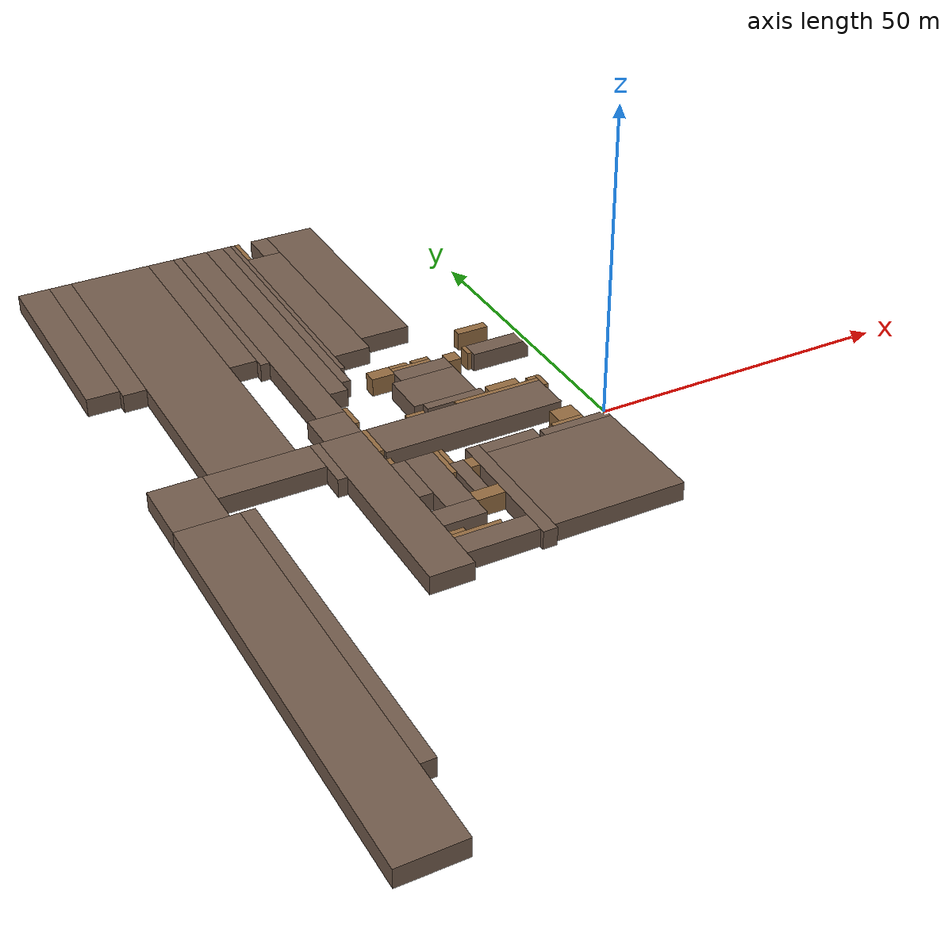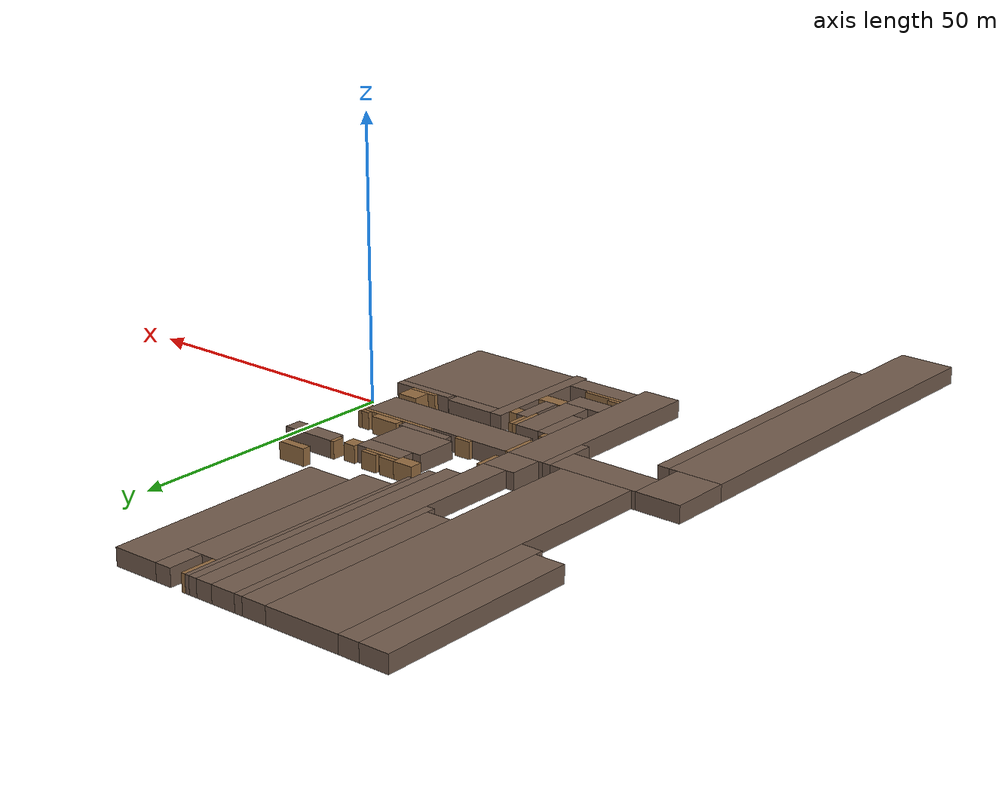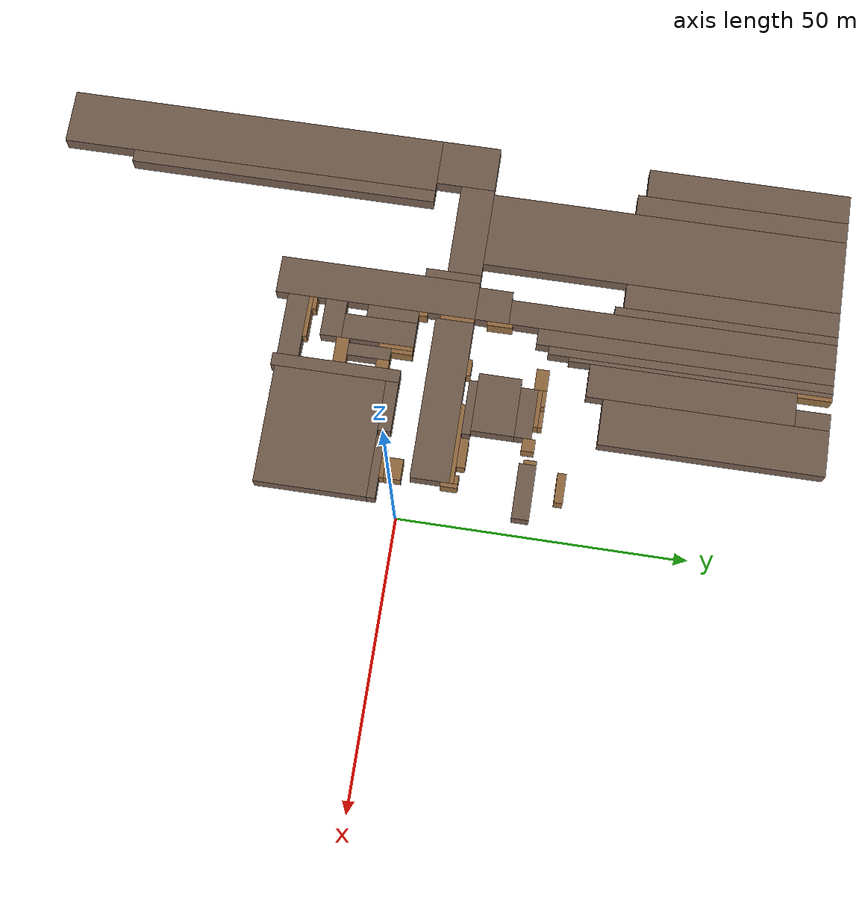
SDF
<sdf version="1.9">
 <world name="mosim_ue_factoryenvironmentcollect">
  <model name="ue_occ_0000">
   <static>true</static>
   <pose>-64.875 -36 1.5 0 0 0</pose>
   <link name="link">
    <collision name="collision"><geometry><box><size>9.75 67.5 3</size></box></geometry></collision>
    <visual name="visual">
     <geometry><box><size>9.75 67.5 3</size></box></geometry>
     <material><ambient>0.45 0.36 0.3 1</ambient><diffuse>0.45 0.36 0.3 1</diffuse></material>
    </visual>
   </link>
  </model>
  <model name="ue_occ_0001">
   <static>true</static>
   <pose>-58.875 -29.625 1.5 0 0 0</pose>
   <link name="link">
    <collision name="collision"><geometry><box><size>2.25 54.75 3</size></box></geometry></collision>
    <visual name="visual">
     <geometry><box><size>2.25 54.75 3</size></box></geometry>
     <material><ambient>0.45 0.36 0.3 1</ambient><diffuse>0.45 0.36 0.3 1</diffuse></material>
    </visual>
   </link>
  </model>
  <model name="ue_occ_0003">
   <static>true</static>
   <pose>-40.125 -9.375 1.5 0 0 0</pose>
   <link name="link">
    <collision name="collision"><geometry><box><size>6.75 35.25 3</size></box></geometry></collision>
    <visual name="visual">
     <geometry><box><size>6.75 35.25 3</size></box></geometry>
     <material><ambient>0.45 0.36 0.3 1</ambient><diffuse>0.45 0.36 0.3 1</diffuse></material>
    </visual>
   </link>
  </model>
  <model name="ue_occ_0004">
   <static>true</static>
   <pose>-24.375 -14.25 1.5 0 0 0</pose>
   <link name="link">
    <collision name="collision"><geometry><box><size>2.25 22.5 3</size></box></geometry></collision>
    <visual name="visual">
     <geometry><box><size>2.25 22.5 3</size></box></geometry>
     <material><ambient>0.45 0.36 0.3 1</ambient><diffuse>0.45 0.36 0.3 1</diffuse></material>
    </visual>
   </link>
  </model>
  <model name="ue_occ_0005">
   <static>true</static>
   <pose>-31.125 -22.875 1.5 0 0 0</pose>
   <link name="link">
    <collision name="collision"><geometry><box><size>11.25 3.75 3</size></box></geometry></collision>
    <visual name="visual">
     <geometry><box><size>11.25 3.75 3</size></box></geometry>
     <material><ambient>0.45 0.36 0.3 1</ambient><diffuse>0.45 0.36 0.3 1</diffuse></material>
    </visual>
   </link>
  </model>
  <model name="ue_occ_0006">
   <static>true</static>
   <pose>-12.75 -15 1.5 0 0 0</pose>
   <link name="link">
    <collision name="collision"><geometry><box><size>21 19.5 3</size></box></geometry></collision>
    <visual name="visual">
     <geometry><box><size>21 19.5 3</size></box></geometry>
     <material><ambient>0.45 0.36 0.3 1</ambient><diffuse>0.45 0.36 0.3 1</diffuse></material>
    </visual>
   </link>
  </model>
  <model name="ue_occ_0014">
   <static>true</static>
   <pose>-33 -20.625 1.5 0 0 0</pose>
   <link name="link">
    <collision name="collision"><geometry><box><size>7.5 0.75 3</size></box></geometry></collision>
    <visual name="visual">
     <geometry><box><size>7.5 0.75 3</size></box></geometry>
     <material><ambient>0.58 0.42 0.25 1</ambient><diffuse>0.58 0.42 0.25 1</diffuse></material>
    </visual>
   </link>
  </model>
  <model name="ue_occ_0015">
   <static>true</static>
   <pose>-35.625 -19.875 1.5 0 0 0</pose>
   <link name="link">
    <collision name="collision"><geometry><box><size>2.25 0.75 3</size></box></geometry></collision>
    <visual name="visual">
     <geometry><box><size>2.25 0.75 3</size></box></geometry>
     <material><ambient>0.58 0.42 0.25 1</ambient><diffuse>0.58 0.42 0.25 1</diffuse></material>
    </visual>
   </link>
  </model>
  <model name="ue_occ_0023">
   <static>true</static>
   <pose>-33.375 -16.125 1.5 0 0 0</pose>
   <link name="link">
    <collision name="collision"><geometry><box><size>6.75 3.75 3</size></box></geometry></collision>
    <visual name="visual">
     <geometry><box><size>6.75 3.75 3</size></box></geometry>
     <material><ambient>0.45 0.36 0.3 1</ambient><diffuse>0.45 0.36 0.3 1</diffuse></material>
    </visual>
   </link>
  </model>
  <model name="ue_occ_0024">
   <static>true</static>
   <pose>-27.75 -13.875 1.5 0 0 0</pose>
   <link name="link">
    <collision name="collision"><geometry><box><size>4.5 2.25 3</size></box></geometry></collision>
    <visual name="visual">
     <geometry><box><size>4.5 2.25 3</size></box></geometry>
     <material><ambient>0.58 0.42 0.25 1</ambient><diffuse>0.58 0.42 0.25 1</diffuse></material>
    </visual>
   </link>
  </model>
  <model name="ue_occ_0026">
   <static>true</static>
   <pose>-32.25 -7.875 1.5 0 0 0</pose>
   <link name="link">
    <collision name="collision"><geometry><box><size>4.5 12.75 3</size></box></geometry></collision>
    <visual name="visual">
     <geometry><box><size>4.5 12.75 3</size></box></geometry>
     <material><ambient>0.45 0.36 0.3 1</ambient><diffuse>0.45 0.36 0.3 1</diffuse></material>
    </visual>
   </link>
  </model>
  <model name="ue_occ_0027">
   <static>true</static>
   <pose>-28.125 -9 1.5 0 0 0</pose>
   <link name="link">
    <collision name="collision"><geometry><box><size>2.25 7.5 3</size></box></geometry></collision>
    <visual name="visual">
     <geometry><box><size>2.25 7.5 3</size></box></geometry>
     <material><ambient>0.45 0.36 0.3 1</ambient><diffuse>0.45 0.36 0.3 1</diffuse></material>
    </visual>
   </link>
  </model>
  <model name="ue_occ_0028">
   <static>true</static>
   <pose>-35.625 -6 1.5 0 0 0</pose>
   <link name="link">
    <collision name="collision"><geometry><box><size>2.25 9 3</size></box></geometry></collision>
    <visual name="visual">
     <geometry><box><size>2.25 9 3</size></box></geometry>
     <material><ambient>0.45 0.36 0.3 1</ambient><diffuse>0.45 0.36 0.3 1</diffuse></material>
    </visual>
   </link>
  </model>
  <model name="ue_occ_0029">
   <static>true</static>
   <pose>-29.625 -4.5 1.5 0 0 0</pose>
   <link name="link">
    <collision name="collision"><geometry><box><size>0.75 6 3</size></box></geometry></collision>
    <visual name="visual">
     <geometry><box><size>0.75 6 3</size></box></geometry>
     <material><ambient>0.58 0.42 0.25 1</ambient><diffuse>0.58 0.42 0.25 1</diffuse></material>
    </visual>
   </link>
  </model>
  <model name="ue_occ_0030">
   <static>true</static>
   <pose>-26.25 -6.375 1.5 0 0 0</pose>
   <link name="link">
    <collision name="collision"><geometry><box><size>1.5 2.25 3</size></box></geometry></collision>
    <visual name="visual">
     <geometry><box><size>1.5 2.25 3</size></box></geometry>
     <material><ambient>0.58 0.42 0.25 1</ambient><diffuse>0.58 0.42 0.25 1</diffuse></material>
    </visual>
   </link>
  </model>
  <model name="ue_occ_0032">
   <static>true</static>
   <pose>-28.875 -3.375 1.5 0 0 0</pose>
   <link name="link">
    <collision name="collision"><geometry><box><size>0.75 3.75 3</size></box></geometry></collision>
    <visual name="visual">
     <geometry><box><size>0.75 3.75 3</size></box></geometry>
     <material><ambient>0.58 0.42 0.25 1</ambient><diffuse>0.58 0.42 0.25 1</diffuse></material>
    </visual>
   </link>
  </model>
  <model name="ue_occ_0033">
   <static>true</static>
   <pose>-18.75 -4.125 1.5 0 0 0</pose>
   <link name="link">
    <collision name="collision"><geometry><box><size>9 2.25 3</size></box></geometry></collision>
    <visual name="visual">
     <geometry><box><size>9 2.25 3</size></box></geometry>
     <material><ambient>0.45 0.36 0.3 1</ambient><diffuse>0.45 0.36 0.3 1</diffuse></material>
    </visual>
   </link>
  </model>
  <model name="ue_occ_0034">
   <static>true</static>
   <pose>-7.875 -4.5 1.5 0 0 0</pose>
   <link name="link">
    <collision name="collision"><geometry><box><size>11.25 1.5 3</size></box></geometry></collision>
    <visual name="visual">
     <geometry><box><size>11.25 1.5 3</size></box></geometry>
     <material><ambient>0.45 0.36 0.3 1</ambient><diffuse>0.45 0.36 0.3 1</diffuse></material>
    </visual>
   </link>
  </model>
  <model name="ue_occ_0035">
   <static>true</static>
   <pose>-8.625 -3.375 1.5 0 0 0</pose>
   <link name="link">
    <collision name="collision"><geometry><box><size>5.25 0.75 3</size></box></geometry></collision>
    <visual name="visual">
     <geometry><box><size>5.25 0.75 3</size></box></geometry>
     <material><ambient>0.58 0.42 0.25 1</ambient><diffuse>0.58 0.42 0.25 1</diffuse></material>
    </visual>
   </link>
  </model>
  <model name="ue_occ_0036">
   <static>true</static>
   <pose>-7.875 -1.5 1.5 0 0 0</pose>
   <link name="link">
    <collision name="collision"><geometry><box><size>3.75 3 3</size></box></geometry></collision>
    <visual name="visual">
     <geometry><box><size>3.75 3 3</size></box></geometry>
     <material><ambient>0.58 0.42 0.25 1</ambient><diffuse>0.58 0.42 0.25 1</diffuse></material>
    </visual>
   </link>
  </model>
  <model name="ue_occ_0037">
   <static>true</static>
   <pose>-65.625 3 1.5 0 0 0</pose>
   <link name="link">
    <collision name="collision"><geometry><box><size>8.25 10.5 3</size></box></geometry></collision>
    <visual name="visual">
     <geometry><box><size>8.25 10.5 3</size></box></geometry>
     <material><ambient>0.45 0.36 0.3 1</ambient><diffuse>0.45 0.36 0.3 1</diffuse></material>
    </visual>
   </link>
  </model>
  <model name="ue_occ_0038">
   <static>true</static>
   <pose>-44.25 3.375 1.5 0 0 0</pose>
   <link name="link">
    <collision name="collision"><geometry><box><size>1.5 9.75 3</size></box></geometry></collision>
    <visual name="visual">
     <geometry><box><size>1.5 9.75 3</size></box></geometry>
     <material><ambient>0.45 0.36 0.3 1</ambient><diffuse>0.45 0.36 0.3 1</diffuse></material>
    </visual>
   </link>
  </model>
  <model name="ue_occ_0039">
   <static>true</static>
   <pose>-36.375 -0.75 1.5 0 0 0</pose>
   <link name="link">
    <collision name="collision"><geometry><box><size>0.75 1.5 3</size></box></geometry></collision>
    <visual name="visual">
     <geometry><box><size>0.75 1.5 3</size></box></geometry>
     <material><ambient>0.58 0.42 0.25 1</ambient><diffuse>0.58 0.42 0.25 1</diffuse></material>
    </visual>
   </link>
  </model>
  <model name="ue_occ_0040">
   <static>true</static>
   <pose>-21.375 4.875 1.5 0 0 0</pose>
   <link name="link">
    <collision name="collision"><geometry><box><size>29.25 6.75 3</size></box></geometry></collision>
    <visual name="visual">
     <geometry><box><size>29.25 6.75 3</size></box></geometry>
     <material><ambient>0.45 0.36 0.3 1</ambient><diffuse>0.45 0.36 0.3 1</diffuse></material>
    </visual>
   </link>
  </model>
  <model name="ue_occ_0043">
   <static>true</static>
   <pose>-53.25 5.25 1.5 0 0 0</pose>
   <link name="link">
    <collision name="collision"><geometry><box><size>16.5 6 3</size></box></geometry></collision>
    <visual name="visual">
     <geometry><box><size>16.5 6 3</size></box></geometry>
     <material><ambient>0.45 0.36 0.3 1</ambient><diffuse>0.45 0.36 0.3 1</diffuse></material>
    </visual>
   </link>
  </model>
  <model name="ue_occ_0044">
   <static>true</static>
   <pose>-36.375 5.25 1.5 0 0 0</pose>
   <link name="link">
    <collision name="collision"><geometry><box><size>0.75 6 3</size></box></geometry></collision>
    <visual name="visual">
     <geometry><box><size>0.75 6 3</size></box></geometry>
     <material><ambient>0.58 0.42 0.25 1</ambient><diffuse>0.58 0.42 0.25 1</diffuse></material>
    </visual>
   </link>
  </model>
  <model name="ue_occ_0050">
   <static>true</static>
   <pose>-6.375 8.25 1.5 0 0 0</pose>
   <link name="link">
    <collision name="collision"><geometry><box><size>0.75 3 3</size></box></geometry></collision>
    <visual name="visual">
     <geometry><box><size>0.75 3 3</size></box></geometry>
     <material><ambient>0.58 0.42 0.25 1</ambient><diffuse>0.58 0.42 0.25 1</diffuse></material>
    </visual>
   </link>
  </model>
  <model name="ue_occ_0054">
   <static>true</static>
   <pose>-54 39.75 1.5 0 0 0</pose>
   <link name="link">
    <collision name="collision"><geometry><box><size>13.5 63 3</size></box></geometry></collision>
    <visual name="visual">
     <geometry><box><size>13.5 63 3</size></box></geometry>
     <material><ambient>0.45 0.36 0.3 1</ambient><diffuse>0.45 0.36 0.3 1</diffuse></material>
    </visual>
   </link>
  </model>
  <model name="ue_occ_0055">
   <static>true</static>
   <pose>-39.75 11.25 1.5 0 0 0</pose>
   <link name="link">
    <collision name="collision"><geometry><box><size>6 6 3</size></box></geometry></collision>
    <visual name="visual">
     <geometry><box><size>6 6 3</size></box></geometry>
     <material><ambient>0.45 0.36 0.3 1</ambient><diffuse>0.45 0.36 0.3 1</diffuse></material>
    </visual>
   </link>
  </model>
  <model name="ue_occ_0056">
   <static>true</static>
   <pose>-27.75 8.625 1.5 0 0 0</pose>
   <link name="link">
    <collision name="collision"><geometry><box><size>3 0.75 3</size></box></geometry></collision>
    <visual name="visual">
     <geometry><box><size>3 0.75 3</size></box></geometry>
     <material><ambient>0.58 0.42 0.25 1</ambient><diffuse>0.58 0.42 0.25 1</diffuse></material>
    </visual>
   </link>
  </model>
  <model name="ue_occ_0057">
   <static>true</static>
   <pose>-13.875 8.625 1.5 0 0 0</pose>
   <link name="link">
    <collision name="collision"><geometry><box><size>14.25 0.75 3</size></box></geometry></collision>
    <visual name="visual">
     <geometry><box><size>14.25 0.75 3</size></box></geometry>
     <material><ambient>0.58 0.42 0.25 1</ambient><diffuse>0.58 0.42 0.25 1</diffuse></material>
    </visual>
   </link>
  </model>
  <model name="ue_occ_0058">
   <static>true</static>
   <pose>-20.625 9.75 1.5 0 0 0</pose>
   <link name="link">
    <collision name="collision"><geometry><box><size>9.75 1.5 3</size></box></geometry></collision>
    <visual name="visual">
     <geometry><box><size>9.75 1.5 3</size></box></geometry>
     <material><ambient>0.45 0.36 0.3 1</ambient><diffuse>0.45 0.36 0.3 1</diffuse></material>
    </visual>
   </link>
  </model>
  <model name="ue_occ_0059">
   <static>true</static>
   <pose>-12.375 9.75 1.5 0 0 0</pose>
   <link name="link">
    <collision name="collision"><geometry><box><size>5.25 1.5 3</size></box></geometry></collision>
    <visual name="visual">
     <geometry><box><size>5.25 1.5 3</size></box></geometry>
     <material><ambient>0.58 0.42 0.25 1</ambient><diffuse>0.58 0.42 0.25 1</diffuse></material>
    </visual>
   </link>
  </model>
  <model name="ue_occ_0060">
   <static>true</static>
   <pose>-7.5 9.375 1.5 0 0 0</pose>
   <link name="link">
    <collision name="collision"><geometry><box><size>1.5 0.75 3</size></box></geometry></collision>
    <visual name="visual">
     <geometry><box><size>1.5 0.75 3</size></box></geometry>
     <material><ambient>0.58 0.42 0.25 1</ambient><diffuse>0.58 0.42 0.25 1</diffuse></material>
    </visual>
   </link>
  </model>
  <model name="ue_occ_0062">
   <static>true</static>
   <pose>-36.375 12.75 1.5 0 0 0</pose>
   <link name="link">
    <collision name="collision"><geometry><box><size>0.75 4.5 3</size></box></geometry></collision>
    <visual name="visual">
     <geometry><box><size>0.75 4.5 3</size></box></geometry>
     <material><ambient>0.58 0.42 0.25 1</ambient><diffuse>0.58 0.42 0.25 1</diffuse></material>
    </visual>
   </link>
  </model>
  <model name="ue_occ_0063">
   <static>true</static>
   <pose>-21.75 14.25 1.5 0 0 0</pose>
   <link name="link">
    <collision name="collision"><geometry><box><size>10.5 7.5 3</size></box></geometry></collision>
    <visual name="visual">
     <geometry><box><size>10.5 7.5 3</size></box></geometry>
     <material><ambient>0.45 0.36 0.3 1</ambient><diffuse>0.45 0.36 0.3 1</diffuse></material>
    </visual>
   </link>
  </model>
  <model name="ue_occ_0067">
   <static>true</static>
   <pose>-39 42.75 1.5 0 0 0</pose>
   <link name="link">
    <collision name="collision"><geometry><box><size>4.5 57 3</size></box></geometry></collision>
    <visual name="visual">
     <geometry><box><size>4.5 57 3</size></box></geometry>
     <material><ambient>0.45 0.36 0.3 1</ambient><diffuse>0.45 0.36 0.3 1</diffuse></material>
    </visual>
   </link>
  </model>
  <model name="ue_occ_0070">
   <static>true</static>
   <pose>-21 19.5 1.5 0 0 0</pose>
   <link name="link">
    <collision name="collision"><geometry><box><size>9 3 3</size></box></geometry></collision>
    <visual name="visual">
     <geometry><box><size>9 3 3</size></box></geometry>
     <material><ambient>0.45 0.36 0.3 1</ambient><diffuse>0.45 0.36 0.3 1</diffuse></material>
    </visual>
   </link>
  </model>
  <model name="ue_occ_0072">
   <static>true</static>
   <pose>-35.25 45.375 1.5 0 0 0</pose>
   <link name="link">
    <collision name="collision"><geometry><box><size>3 51.75 3</size></box></geometry></collision>
    <visual name="visual">
     <geometry><box><size>3 51.75 3</size></box></geometry>
     <material><ambient>0.45 0.36 0.3 1</ambient><diffuse>0.45 0.36 0.3 1</diffuse></material>
    </visual>
   </link>
  </model>
  <model name="ue_occ_0073">
   <static>true</static>
   <pose>-15.375 20.625 1.5 0 0 0</pose>
   <link name="link">
    <collision name="collision"><geometry><box><size>2.25 2.25 3</size></box></geometry></collision>
    <visual name="visual">
     <geometry><box><size>2.25 2.25 3</size></box></geometry>
     <material><ambient>0.58 0.42 0.25 1</ambient><diffuse>0.58 0.42 0.25 1</diffuse></material>
    </visual>
   </link>
  </model>
  <model name="ue_occ_0074">
   <static>true</static>
   <pose>-7.125 21 1.5 0 0 0</pose>
   <link name="link">
    <collision name="collision"><geometry><box><size>9.75 3 3</size></box></geometry></collision>
    <visual name="visual">
     <geometry><box><size>9.75 3 3</size></box></geometry>
     <material><ambient>0.45 0.36 0.3 1</ambient><diffuse>0.45 0.36 0.3 1</diffuse></material>
    </visual>
   </link>
  </model>
  <model name="ue_occ_0076">
   <static>true</static>
   <pose>-27.375 21.375 1.5 0 0 0</pose>
   <link name="link">
    <collision name="collision"><geometry><box><size>3.75 2.25 3</size></box></geometry></collision>
    <visual name="visual">
     <geometry><box><size>3.75 2.25 3</size></box></geometry>
     <material><ambient>0.58 0.42 0.25 1</ambient><diffuse>0.58 0.42 0.25 1</diffuse></material>
    </visual>
   </link>
  </model>
  <model name="ue_occ_0077">
   <static>true</static>
   <pose>-12.375 21.375 1.5 0 0 0</pose>
   <link name="link">
    <collision name="collision"><geometry><box><size>0.75 2.25 3</size></box></geometry></collision>
    <visual name="visual">
     <geometry><box><size>0.75 2.25 3</size></box></geometry>
     <material><ambient>0.58 0.42 0.25 1</ambient><diffuse>0.58 0.42 0.25 1</diffuse></material>
    </visual>
   </link>
  </model>
  <model name="ue_occ_0079">
   <static>true</static>
   <pose>-22.125 21.375 1.5 0 0 0</pose>
   <link name="link">
    <collision name="collision"><geometry><box><size>6.75 0.75 3</size></box></geometry></collision>
    <visual name="visual">
     <geometry><box><size>6.75 0.75 3</size></box></geometry>
     <material><ambient>0.58 0.42 0.25 1</ambient><diffuse>0.58 0.42 0.25 1</diffuse></material>
    </visual>
   </link>
  </model>
  <model name="ue_occ_0080">
   <static>true</static>
   <pose>-33 46.5 1.5 0 0 0</pose>
   <link name="link">
    <collision name="collision"><geometry><box><size>1.5 49.5 3</size></box></geometry></collision>
    <visual name="visual">
     <geometry><box><size>1.5 49.5 3</size></box></geometry>
     <material><ambient>0.45 0.36 0.3 1</ambient><diffuse>0.45 0.36 0.3 1</diffuse></material>
    </visual>
   </link>
  </model>
  <model name="ue_occ_0081">
   <static>true</static>
   <pose>-24 22.125 1.5 0 0 0</pose>
   <link name="link">
    <collision name="collision"><geometry><box><size>3 0.75 3</size></box></geometry></collision>
    <visual name="visual">
     <geometry><box><size>3 0.75 3</size></box></geometry>
     <material><ambient>0.58 0.42 0.25 1</ambient><diffuse>0.58 0.42 0.25 1</diffuse></material>
    </visual>
   </link>
  </model>
  <model name="ue_occ_0082">
   <static>true</static>
   <pose>-20.25 22.125 1.5 0 0 0</pose>
   <link name="link">
    <collision name="collision"><geometry><box><size>3 0.75 3</size></box></geometry></collision>
    <visual name="visual">
     <geometry><box><size>3 0.75 3</size></box></geometry>
     <material><ambient>0.58 0.42 0.25 1</ambient><diffuse>0.58 0.42 0.25 1</diffuse></material>
    </visual>
   </link>
  </model>
  <model name="ue_occ_0084">
   <static>true</static>
   <pose>-31.875 48.375 1.5 0 0 0</pose>
   <link name="link">
    <collision name="collision"><geometry><box><size>0.75 45.75 3</size></box></geometry></collision>
    <visual name="visual">
     <geometry><box><size>0.75 45.75 3</size></box></geometry>
     <material><ambient>0.45 0.36 0.3 1</ambient><diffuse>0.45 0.36 0.3 1</diffuse></material>
    </visual>
   </link>
  </model>
  <model name="ue_occ_0085">
   <static>true</static>
   <pose>-8.625 27 1.5 0 0 0</pose>
   <link name="link">
    <collision name="collision"><geometry><box><size>5.25 1.5 3</size></box></geometry></collision>
    <visual name="visual">
     <geometry><box><size>5.25 1.5 3</size></box></geometry>
     <material><ambient>0.58 0.42 0.25 1</ambient><diffuse>0.58 0.42 0.25 1</diffuse></material>
    </visual>
   </link>
  </model>
  <model name="ue_occ_0087">
   <static>true</static>
   <pose>-28.5 47.25 1.5 0 0 0</pose>
   <link name="link">
    <collision name="collision"><geometry><box><size>6 36 3</size></box></geometry></collision>
    <visual name="visual">
     <geometry><box><size>6 36 3</size></box></geometry>
     <material><ambient>0.45 0.36 0.3 1</ambient><diffuse>0.45 0.36 0.3 1</diffuse></material>
    </visual>
   </link>
  </model>
  <model name="ue_occ_0099">
   <static>true</static>
   <pose>-42 51.75 1.5 0 0 0</pose>
   <link name="link">
    <collision name="collision"><geometry><box><size>1.5 39 3</size></box></geometry></collision>
    <visual name="visual">
     <geometry><box><size>1.5 39 3</size></box></geometry>
     <material><ambient>0.45 0.36 0.3 1</ambient><diffuse>0.45 0.36 0.3 1</diffuse></material>
    </visual>
   </link>
  </model>
  <model name="ue_occ_0100">
   <static>true</static>
   <pose>-21.375 51.75 1.5 0 0 0</pose>
   <link name="link">
    <collision name="collision"><geometry><box><size>8.25 39 3</size></box></geometry></collision>
    <visual name="visual">
     <geometry><box><size>8.25 39 3</size></box></geometry>
     <material><ambient>0.45 0.36 0.3 1</ambient><diffuse>0.45 0.36 0.3 1</diffuse></material>
    </visual>
   </link>
  </model>
  <model name="ue_occ_0105">
   <static>true</static>
   <pose>-62.625 52.5 1.5 0 0 0</pose>
   <link name="link">
    <collision name="collision"><geometry><box><size>3.75 37.5 3</size></box></geometry></collision>
    <visual name="visual">
     <geometry><box><size>3.75 37.5 3</size></box></geometry>
     <material><ambient>0.45 0.36 0.3 1</ambient><diffuse>0.45 0.36 0.3 1</diffuse></material>
    </visual>
   </link>
  </model>
  <model name="ue_occ_0106">
   <static>true</static>
   <pose>-45 52.5 1.5 0 0 0</pose>
   <link name="link">
    <collision name="collision"><geometry><box><size>4.5 37.5 3</size></box></geometry></collision>
    <visual name="visual">
     <geometry><box><size>4.5 37.5 3</size></box></geometry>
     <material><ambient>0.45 0.36 0.3 1</ambient><diffuse>0.45 0.36 0.3 1</diffuse></material>
    </visual>
   </link>
  </model>
  <model name="ue_occ_0107">
   <static>true</static>
   <pose>-67.125 53.25 1.5 0 0 0</pose>
   <link name="link">
    <collision name="collision"><geometry><box><size>5.25 36 3</size></box></geometry></collision>
    <visual name="visual">
     <geometry><box><size>5.25 36 3</size></box></geometry>
     <material><ambient>0.45 0.36 0.3 1</ambient><diffuse>0.45 0.36 0.3 1</diffuse></material>
    </visual>
   </link>
  </model>
  <model name="ue_occ_0109">
   <static>true</static>
   <pose>-31.125 68.25 1.5 0 0 0</pose>
   <link name="link">
    <collision name="collision"><geometry><box><size>0.75 6 3</size></box></geometry></collision>
    <visual name="visual">
     <geometry><box><size>0.75 6 3</size></box></geometry>
     <material><ambient>0.58 0.42 0.25 1</ambient><diffuse>0.58 0.42 0.25 1</diffuse></material>
    </visual>
   </link>
  </model>
  <model name="ue_occ_0110">
   <static>true</static>
   <pose>-27 68.25 1.5 0 0 0</pose>
   <link name="link">
    <collision name="collision"><geometry><box><size>3 6 3</size></box></geometry></collision>
    <visual name="visual">
     <geometry><box><size>3 6 3</size></box></geometry>
     <material><ambient>0.45 0.36 0.3 1</ambient><diffuse>0.45 0.36 0.3 1</diffuse></material>
    </visual>
   </link>
  </model>
 </world>
</sdf>
